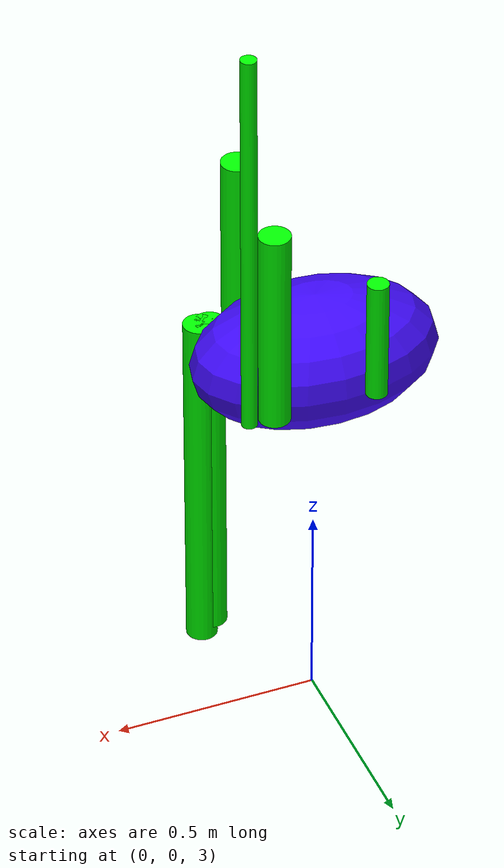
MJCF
<mujoco model="unnamed_model">
  <option timestep="0.01"/>
  <visual>
    <headlight ambient="0.5 0.5 0.5"/>
  </visual>
  <default>
    <default class="/"/>
  </default>
  <worldbody>
    <light name="//unnamed_light_0" class="/" pos="0 0 3" dir="0 0 -1" diffuse="0.5 0.5 0.5"/>
    <geom name="//unnamed_geom_0" class="/" type="plane" size="50 50 0.10000000000000001"/>
    <body name="//unnamed_body_0" pos="0 0 4">
      <joint name="//unnamed_joint_0" class="/" type="free"/>
      <geom name="//unnamed_geom_1" class="/" type="ellipsoid" size="0.30071352696740572 0.19753742771392496 0.16128087836513577" rgba="0.247 0.035000000000000003 0.97999999999999998 1" pos="0 0 0"/>
      <body name="limb0" pos="-0.07214536872898869 0.19753742771392496 0.15427922134028071">
        <geom name="//unnamed_geom_2" class="/" type="cylinder" size="0.025992100353521487 0.15427922134028071" rgba="0 1 0 1"/>
        <joint name="0_joint" class="/" type="hinge" pos="0 0 -0.15427922134028071" axis="0 1 0" range="-45 45"/>
      </body>
      <body name="limb1" pos="0.18172725869811557 -0.19753742771392496 -0.44909702097792314">
        <geom name="//unnamed_geom_3" class="/" type="cylinder" size="0.036787874496359084 0.44909702097792314" rgba="0 1 0 1"/>
        <joint name="1_joint" class="/" type="hinge" pos="0 0 0.44909702097792314" axis="0 1 0" range="-45 45"/>
      </body>
      <body name="limb2" pos="0.2398109715522837 0.19753742771392496 0.49569907090626575">
        <geom name="//unnamed_geom_4" class="/" type="cylinder" size="0.01919967624232893 0.49569907090626575" rgba="0 1 0 1"/>
        <joint name="2_joint" class="/" type="hinge" pos="0 0 -0.49569907090626575" axis="0 1 0" range="-45 45"/>
      </body>
      <body name="limb3" pos="0.20817829787819842 -0.19753742771392496 -0.46463379186780784">
        <geom name="//unnamed_geom_5" class="/" type="cylinder" size="0.038389386516353104 0.46463379186780784" rgba="0 1 0 1"/>
        <joint name="3_joint" class="/" type="hinge" pos="0 0 0.46463379186780784" axis="0 1 0" range="-45 45"/>
      </body>
      <body name="limb4" pos="0.10990338234435781 -0.19753742771392496 0.21619289323229915">
        <geom name="//unnamed_geom_6" class="/" type="cylinder" size="0.039937383079740228 0.21619289323229915" rgba="0 1 0 1"/>
        <joint name="4_joint" class="/" type="hinge" pos="0 0 -0.21619289323229915" axis="0 1 0" range="-45 45"/>
      </body>
      <body name="limb5" pos="0.17856913794199247 0.19753742771392496 0.25451136892728343">
        <geom name="//unnamed_geom_7" class="/" type="cylinder" size="0.037763327774046514 0.25451136892728343" rgba="0 1 0 1"/>
        <joint name="5_joint" class="/" type="hinge" pos="0 0 -0.25451136892728343" axis="0 1 0" range="-45 45"/>
      </body>
    </body>
  </worldbody>
  <actuator>
    <motor name="motor_0_joint" class="/" ctrllimited="true" ctrlrange="-45 45" gear="10" joint="0_joint"/>
    <motor name="motor_1_joint" class="/" ctrllimited="true" ctrlrange="-45 45" gear="10" joint="1_joint"/>
    <motor name="motor_2_joint" class="/" ctrllimited="true" ctrlrange="-45 45" gear="10" joint="2_joint"/>
    <motor name="motor_3_joint" class="/" ctrllimited="true" ctrlrange="-45 45" gear="10" joint="3_joint"/>
    <motor name="motor_4_joint" class="/" ctrllimited="true" ctrlrange="-45 45" gear="10" joint="4_joint"/>
    <motor name="motor_5_joint" class="/" ctrllimited="true" ctrlrange="-45 45" gear="10" joint="5_joint"/>
  </actuator>
</mujoco>
